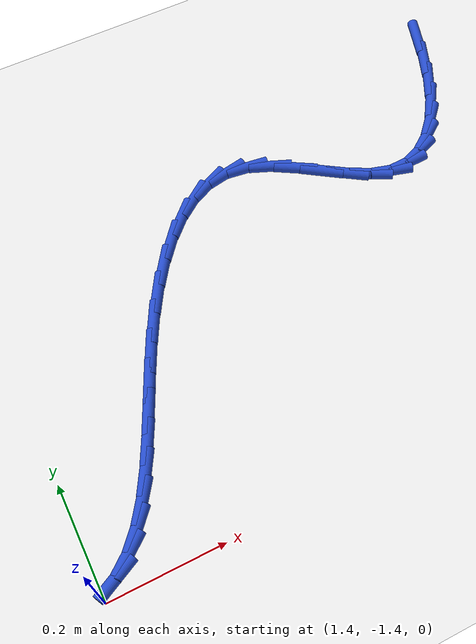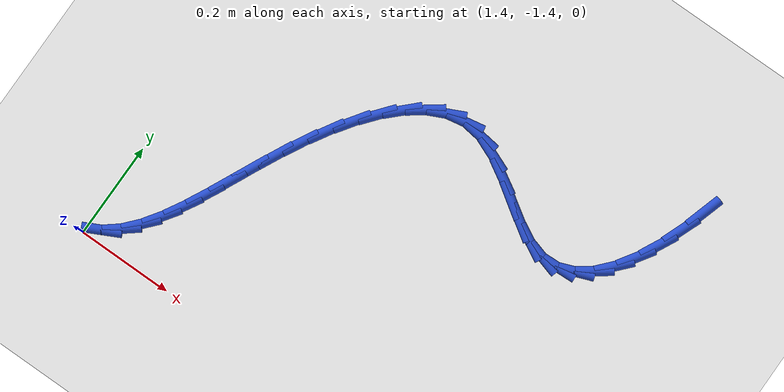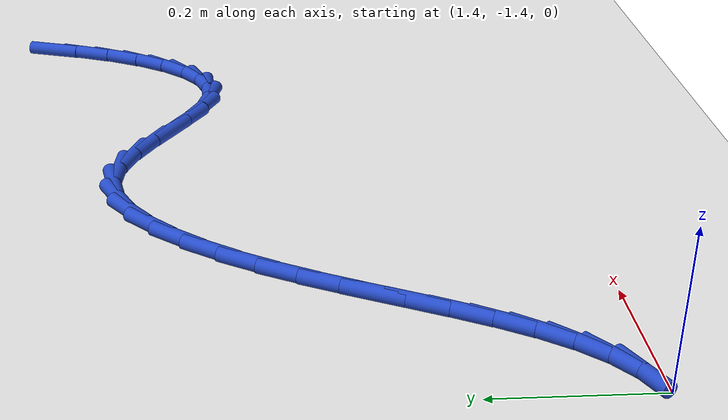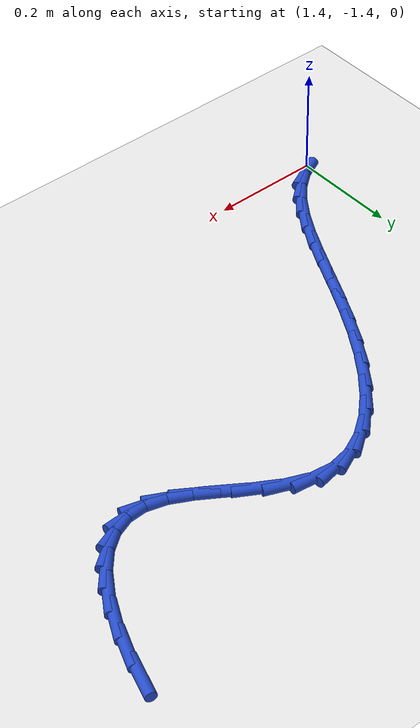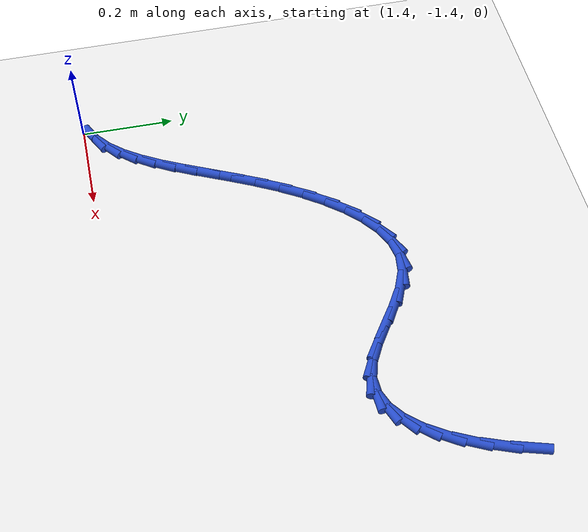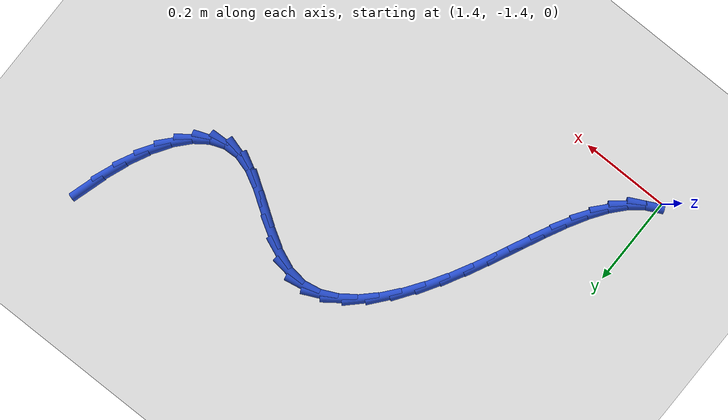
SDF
<sdf version="1.6">
 <world name="default">
  <model name="ground_plane">
   <static>1</static>
   <link name="link">
    <collision name="collision">
     <geometry><plane><normal>0 0 1</normal><size>100 100</size></plane></geometry>
     <surface><friction><ode><mu>100</mu><mu2>50</mu2></ode></friction></surface>
    </collision>
    <visual name="visual">
     <cast_shadows>0</cast_shadows>
     <geometry><plane><normal>0 0 1</normal><size>100 100</size></plane></geometry>
     <material>
      <script><uri>file://media/materials/scripts/gazebo.material</uri><name>Gazebo/WhiteGlow</name></script>
     </material>
    </visual>
   </link>
  </model>
  <model name="line">
   <link name="link_111">
    <pose>2.3686359914458306 -0.6711634547976719 0.01 0 1.57 1.2757212681305317</pose>
    <collision name="collision">
     <geometry><cylinder><radius>0.01</radius><length>0.08</length></cylinder></geometry>
    </collision>
    <visual name="visual">
     <material>
      <script><name>Gazebo/Blue</name><uri>file://media/materials/scripts/gazebo.material</uri></script>
     </material>
     <geometry><cylinder><radius>0.01</radius><length>0.08</length></cylinder></geometry>
    </visual>
   </link>
   <link name="link_112">
    <pose>2.3522188365247083 -0.7251764554757459 0.01 0 1.57 1.2000865424036615</pose>
    <collision name="collision">
     <geometry><cylinder><radius>0.01</radius><length>0.08</length></cylinder></geometry>
    </collision>
    <visual name="visual">
     <material>
      <script><name>Gazebo/Blue</name><uri>file://media/materials/scripts/gazebo.material</uri></script>
     </material>
     <geometry><cylinder><radius>0.01</radius><length>0.08</length></cylinder></geometry>
    </visual>
   </link>
   <link name="link_113">
    <pose>2.3328341585511723 -0.7750495657299482 0.01 0 1.57 1.1085986112692316</pose>
    <collision name="collision">
     <geometry><cylinder><radius>0.01</radius><length>0.08</length></cylinder></geometry>
    </collision>
    <visual name="visual">
     <material>
      <script><name>Gazebo/Blue</name><uri>file://media/materials/scripts/gazebo.material</uri></script>
     </material>
     <geometry><cylinder><radius>0.01</radius><length>0.08</length></cylinder></geometry>
    </visual>
   </link>
   <link name="link_114">
    <pose>2.310612495128983 -0.8196544564122613 0.01 0 1.57 0.9927176297846382</pose>
    <collision name="collision">
     <geometry><cylinder><radius>0.01</radius><length>0.08</length></cylinder></geometry>
    </collision>
    <visual name="visual">
     <material>
      <script><name>Gazebo/Blue</name><uri>file://media/materials/scripts/gazebo.material</uri></script>
     </material>
     <geometry><cylinder><radius>0.01</radius><length>0.08</length></cylinder></geometry>
    </visual>
   </link>
   <link name="link_115">
    <pose>2.285684383861902 -0.857862798374669 0.01 0 1.57 0.8399852270443287</pose>
    <collision name="collision">
     <geometry><cylinder><radius>0.01</radius><length>0.08</length></cylinder></geometry>
    </collision>
    <visual name="visual">
     <material>
      <script><name>Gazebo/Blue</name><uri>file://media/materials/scripts/gazebo.material</uri></script>
     </material>
     <geometry><cylinder><radius>0.01</radius><length>0.08</length></cylinder></geometry>
    </visual>
   </link>
   <link name="link_116">
    <pose>2.2581803623536905 -0.8885462624691549 0.01 0 1.57 0.6342100238807079</pose>
    <collision name="collision">
     <geometry><cylinder><radius>0.01</radius><length>0.08</length></cylinder></geometry>
    </collision>
    <visual name="visual">
     <material>
      <script><name>Gazebo/Blue</name><uri>file://media/materials/scripts/gazebo.material</uri></script>
     </material>
     <geometry><cylinder><radius>0.01</radius><length>0.08</length></cylinder></geometry>
    </visual>
   </link>
   <link name="link_117">
    <pose>2.2282309682081083 -0.9105765195477029 0.01 0 1.57 0.36283047227130877</pose>
    <collision name="collision">
     <geometry><cylinder><radius>0.01</radius><length>0.08</length></cylinder></geometry>
    </collision>
    <visual name="visual">
     <material>
      <script><name>Gazebo/Blue</name><uri>file://media/materials/scripts/gazebo.material</uri></script>
     </material>
     <geometry><cylinder><radius>0.01</radius><length>0.08</length></cylinder></geometry>
    </visual>
   </link>
   <link name="link_118">
    <pose>2.1959667390289175 -0.9228252404622967 0.01 0 1.57 0.03884584399979433</pose>
    <collision name="collision">
     <geometry><cylinder><radius>0.01</radius><length>0.08</length></cylinder></geometry>
    </collision>
    <visual name="visual">
     <material>
      <script><name>Gazebo/Blue</name><uri>file://media/materials/scripts/gazebo.material</uri></script>
     </material>
     <geometry><cylinder><radius>0.01</radius><length>0.08</length></cylinder></geometry>
    </visual>
   </link>
   <link name="link_119">
    <pose>2.1615182124198773 -0.9241640960649203 0.01 0 1.57 -0.2803735217634402</pose>
    <collision name="collision">
     <geometry><cylinder><radius>0.01</radius><length>0.08</length></cylinder></geometry>
    </collision>
    <visual name="visual">
     <material>
      <script><name>Gazebo/Blue</name><uri>file://media/materials/scripts/gazebo.material</uri></script>
     </material>
     <geometry><cylinder><radius>0.01</radius><length>0.08</length></cylinder></geometry>
    </visual>
   </link>
   <link name="link_120">
    <pose>2.1250273746603234 -0.9136562390686658 0.01 0 1.57 -0.4896424603807619</pose>
    <collision name="collision">
     <geometry><cylinder><radius>0.01</radius><length>0.08</length></cylinder></geometry>
    </collision>
    <visual name="visual">
     <material>
      <script><name>Gazebo/Blue</name><uri>file://media/materials/scripts/gazebo.material</uri></script>
     </material>
     <geometry><cylinder><radius>0.01</radius><length>0.08</length></cylinder></geometry>
    </visual>
   </link>
   <link name="link_121">
    <pose>2.086811088473371 -0.8932896728999861 0.01 0 1.57 -0.5814731651198928</pose>
    <collision name="collision">
     <geometry><cylinder><radius>0.01</radius><length>0.08</length></cylinder></geometry>
    </collision>
    <visual name="visual">
     <material>
      <script><name>Gazebo/Blue</name><uri>file://media/materials/scripts/gazebo.material</uri></script>
     </material>
     <geometry><cylinder><radius>0.01</radius><length>0.08</length></cylinder></geometry>
    </visual>
   </link>
   <link name="link_122">
    <pose>2.0473226865462903 -0.8673348940609874 0.01 0 1.57 -0.5938699833793629</pose>
    <collision name="collision">
     <geometry><cylinder><radius>0.01</radius><length>0.08</length></cylinder></geometry>
    </collision>
    <visual name="visual">
     <material>
      <script><name>Gazebo/Blue</name><uri>file://media/materials/scripts/gazebo.material</uri></script>
     </material>
     <geometry><cylinder><radius>0.01</radius><length>0.08</length></cylinder></geometry>
    </visual>
   </link>
   <link name="link_123">
    <pose>2.00701912057545 -0.8401229278539903 0.01 0 1.57 -0.5357239080348138</pose>
    <collision name="collision">
     <geometry><cylinder><radius>0.01</radius><length>0.08</length></cylinder></geometry>
    </collision>
    <visual name="visual">
     <material>
      <script><name>Gazebo/Blue</name><uri>file://media/materials/scripts/gazebo.material</uri></script>
     </material>
     <geometry><cylinder><radius>0.01</radius><length>0.08</length></cylinder></geometry>
    </visual>
   </link>
   <link name="link_124">
    <pose>1.966357342257215 -0.8159847995813152 0.01 0 1.57 -0.3912568885199245</pose>
    <collision name="collision">
     <geometry><cylinder><radius>0.01</radius><length>0.08</length></cylinder></geometry>
    </collision>
    <visual name="visual">
     <material>
      <script><name>Gazebo/Blue</name><uri>file://media/materials/scripts/gazebo.material</uri></script>
     </material>
     <geometry><cylinder><radius>0.01</radius><length>0.08</length></cylinder></geometry>
    </visual>
   </link>
   <link name="link_125">
    <pose>1.9257943032879514 -0.7992515345452822 0.01 0 1.57 -0.12978013951881331</pose>
    <collision name="collision">
     <geometry><cylinder><radius>0.01</radius><length>0.08</length></cylinder></geometry>
    </collision>
    <visual name="visual">
     <material>
      <script><name>Gazebo/Blue</name><uri>file://media/materials/scripts/gazebo.material</uri></script>
     </material>
     <geometry><cylinder><radius>0.01</radius><length>0.08</length></cylinder></geometry>
    </visual>
   </link>
   <link name="link_126">
    <pose>1.8857799245543818 -0.7940291096819693 0.01 0 1.57 0.18066419228621355</pose>
    <collision name="collision">
     <geometry><cylinder><radius>0.01</radius><length>0.08</length></cylinder></geometry>
    </collision>
    <visual name="visual">
     <material>
      <script><name>Gazebo/Blue</name><uri>file://media/materials/scripts/gazebo.material</uri></script>
     </material>
     <geometry><cylinder><radius>0.01</radius><length>0.08</length></cylinder></geometry>
    </visual>
   </link>
   <link name="link_127">
    <pose>1.8466626117411324 -0.8011741136581729 0.01 0 1.57 0.4413236146177927</pose>
    <collision name="collision">
     <geometry><cylinder><radius>0.01</radius><length>0.08</length></cylinder></geometry>
    </collision>
    <visual name="visual">
     <material>
      <script><name>Gazebo/Blue</name><uri>file://media/materials/scripts/gazebo.material</uri></script>
     </material>
     <geometry><cylinder><radius>0.01</radius><length>0.08</length></cylinder></geometry>
    </visual>
   </link>
   <link name="link_128">
    <pose>1.8087144675054312 -0.819100760431985 0.01 0 1.57 0.6378933770778636</pose>
    <collision name="collision">
     <geometry><cylinder><radius>0.01</radius><length>0.08</length></cylinder></geometry>
    </collision>
    <visual name="visual">
     <material>
      <script><name>Gazebo/Blue</name><uri>file://media/materials/scripts/gazebo.material</uri></script>
     </material>
     <geometry><cylinder><radius>0.01</radius><length>0.08</length></cylinder></geometry>
    </visual>
   </link>
   <link name="link_129">
    <pose>1.7722057353203498 -0.8461637535526236 0.01 0 1.57 0.7818650472771462</pose>
    <collision name="collision">
     <geometry><cylinder><radius>0.01</radius><length>0.08</length></cylinder></geometry>
    </collision>
    <visual name="visual">
     <material>
      <script><name>Gazebo/Blue</name><uri>file://media/materials/scripts/gazebo.material</uri></script>
     </material>
     <geometry><cylinder><radius>0.01</radius><length>0.08</length></cylinder></geometry>
    </visual>
   </link>
   <link name="link_130">
    <pose>1.7374066586589603 -0.8807177965693068 0.01 0 1.57 0.8885641218609359</pose>
    <collision name="collision">
     <geometry><cylinder><radius>0.01</radius><length>0.08</length></cylinder></geometry>
    </collision>
    <visual name="visual">
     <material>
      <script><name>Gazebo/Blue</name><uri>file://media/materials/scripts/gazebo.material</uri></script>
     </material>
     <geometry><cylinder><radius>0.01</radius><length>0.08</length></cylinder></geometry>
    </visual>
   </link>
   <link name="link_131">
    <pose>1.7045874809943333 -0.9211175930312515 0.01 0 1.57 0.9699360461490141</pose>
    <collision name="collision">
     <geometry><cylinder><radius>0.01</radius><length>0.08</length></cylinder></geometry>
    </collision>
    <visual name="visual">
     <material>
      <script><name>Gazebo/Blue</name><uri>file://media/materials/scripts/gazebo.material</uri></script>
     </material>
     <geometry><cylinder><radius>0.01</radius><length>0.08</length></cylinder></geometry>
    </visual>
   </link>
   <link name="link_132">
    <pose>1.6740184457995428 -0.9657178464876754 0.01 0 1.57 1.0341933335154099</pose>
    <collision name="collision">
     <geometry><cylinder><radius>0.01</radius><length>0.08</length></cylinder></geometry>
    </collision>
    <visual name="visual">
     <material>
      <script><name>Gazebo/Blue</name><uri>file://media/materials/scripts/gazebo.material</uri></script>
     </material>
     <geometry><cylinder><radius>0.01</radius><length>0.08</length></cylinder></geometry>
    </visual>
   </link>
   <link name="link_133">
    <pose>1.6459690667148297 -1.0128738160689754 0.01 0 1.57 1.0844858389649001</pose>
    <collision name="collision">
     <geometry><cylinder><radius>0.01</radius><length>0.08</length></cylinder></geometry>
    </collision>
    <visual name="visual">
     <material>
      <script><name>Gazebo/Blue</name><uri>file://media/materials/scripts/gazebo.material</uri></script>
     </material>
     <geometry><cylinder><radius>0.01</radius><length>0.08</length></cylinder></geometry>
    </visual>
   </link>
   <link name="link_134">
    <pose>1.6204565365098165 -1.0611328387633872 0.01 0 1.57 1.1173151589413766</pose>
    <collision name="collision">
     <geometry><cylinder><radius>0.01</radius><length>0.08</length></cylinder></geometry>
    </collision>
    <visual name="visual">
     <material>
      <script><name>Gazebo/Blue</name><uri>file://media/materials/scripts/gazebo.material</uri></script>
     </material>
     <geometry><cylinder><radius>0.01</radius><length>0.08</length></cylinder></geometry>
    </visual>
   </link>
   <link name="link_135">
    <pose>1.5968773181455027 -1.10951477866975 0.01 0 1.57 1.1318997379104572</pose>
    <collision name="collision">
     <geometry><cylinder><radius>0.01</radius><length>0.08</length></cylinder></geometry>
    </collision>
    <visual name="visual">
     <material>
      <script><name>Gazebo/Blue</name><uri>file://media/materials/scripts/gazebo.material</uri></script>
     </material>
     <geometry><cylinder><radius>0.01</radius><length>0.08</length></cylinder></geometry>
    </visual>
   </link>
   <link name="link_136">
    <pose>1.5745341351375637 -1.1571108585177137 0.01 0 1.57 1.1273259681333527</pose>
    <collision name="collision">
     <geometry><cylinder><radius>0.01</radius><length>0.08</length></cylinder></geometry>
    </collision>
    <visual name="visual">
     <material>
      <script><name>Gazebo/Blue</name><uri>file://media/materials/scripts/gazebo.material</uri></script>
     </material>
     <geometry><cylinder><radius>0.01</radius><length>0.08</length></cylinder></geometry>
    </visual>
   </link>
   <link name="link_137">
    <pose>1.552729711001677 -1.2030123010369291 0.01 0 1.57 1.1013652397790743</pose>
    <collision name="collision">
     <geometry><cylinder><radius>0.01</radius><length>0.08</length></cylinder></geometry>
    </collision>
    <visual name="visual">
     <material>
      <script><name>Gazebo/Blue</name><uri>file://media/materials/scripts/gazebo.material</uri></script>
     </material>
     <geometry><cylinder><radius>0.01</radius><length>0.08</length></cylinder></geometry>
    </visual>
   </link>
   <link name="link_138">
    <pose>1.5307667692535178 -1.2463103289570465 0.01 0 1.57 1.0500605838537385</pose>
    <collision name="collision">
     <geometry><cylinder><radius>0.01</radius><length>0.08</length></cylinder></geometry>
    </collision>
    <visual name="visual">
     <material>
      <script><name>Gazebo/Blue</name><uri>file://media/materials/scripts/gazebo.material</uri></script>
     </material>
     <geometry><cylinder><radius>0.01</radius><length>0.08</length></cylinder></geometry>
    </visual>
   </link>
   <link name="link_139">
    <pose>1.5079480334087652 -1.2860961650077154 0.01 0 1.57 0.9673873410350385</pose>
    <collision name="collision">
     <geometry><cylinder><radius>0.01</radius><length>0.08</length></cylinder></geometry>
    </collision>
    <visual name="visual">
     <material>
      <script><name>Gazebo/Blue</name><uri>file://media/materials/scripts/gazebo.material</uri></script>
     </material>
     <geometry><cylinder><radius>0.01</radius><length>0.08</length></cylinder></geometry>
    </visual>
   </link>
   <link name="link_140">
    <pose>1.4835762269830937 -1.321461031918588 0.01 0 1.57 0.8455642728235099</pose>
    <collision name="collision">
     <geometry><cylinder><radius>0.01</radius><length>0.08</length></cylinder></geometry>
    </collision>
    <visual name="visual">
     <material>
      <script><name>Gazebo/Blue</name><uri>file://media/materials/scripts/gazebo.material</uri></script>
     </material>
     <geometry><cylinder><radius>0.01</radius><length>0.08</length></cylinder></geometry>
    </visual>
   </link>
   <link name="link_141">
    <pose>1.4569540734921804 -1.351496152419314 0.01 0 1.57 0.6776371225353052</pose>
    <collision name="collision">
     <geometry><cylinder><radius>0.01</radius><length>0.08</length></cylinder></geometry>
    </collision>
    <visual name="visual">
     <material>
      <script><name>Gazebo/Blue</name><uri>file://media/materials/scripts/gazebo.material</uri></script>
     </material>
     <geometry><cylinder><radius>0.01</radius><length>0.08</length></cylinder></geometry>
    </visual>
   </link>
   <link name="link_142">
    <pose>1.4273842964517025 -1.375292749239543 0.01 0 1.57 0.46465767158421206</pose>
    <collision name="collision">
     <geometry><cylinder><radius>0.01</radius><length>0.08</length></cylinder></geometry>
    </collision>
    <visual name="visual">
     <material>
      <script><name>Gazebo/Blue</name><uri>file://media/materials/scripts/gazebo.material</uri></script>
     </material>
     <geometry><cylinder><radius>0.01</radius><length>0.08</length></cylinder></geometry>
    </visual>
   </link>
  </model>
 </world>
</sdf>
